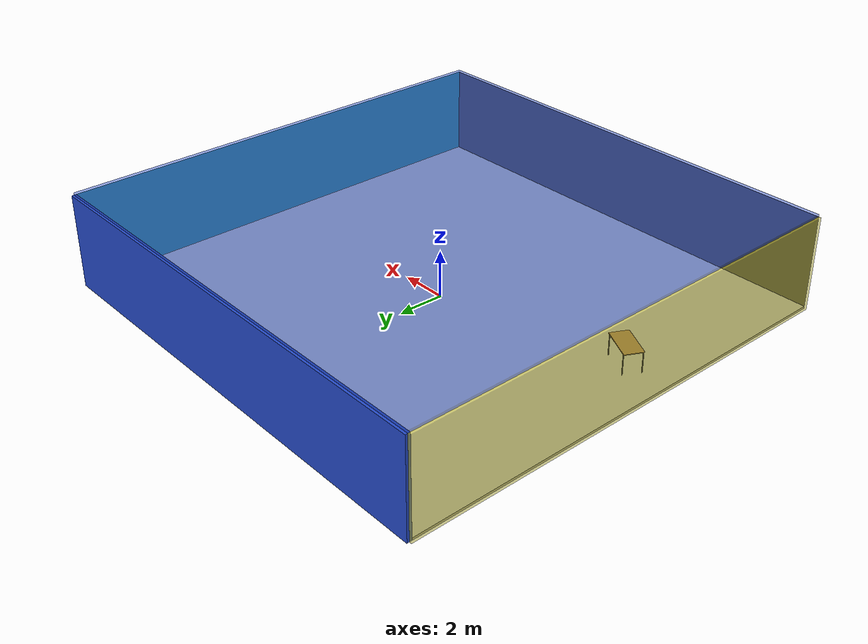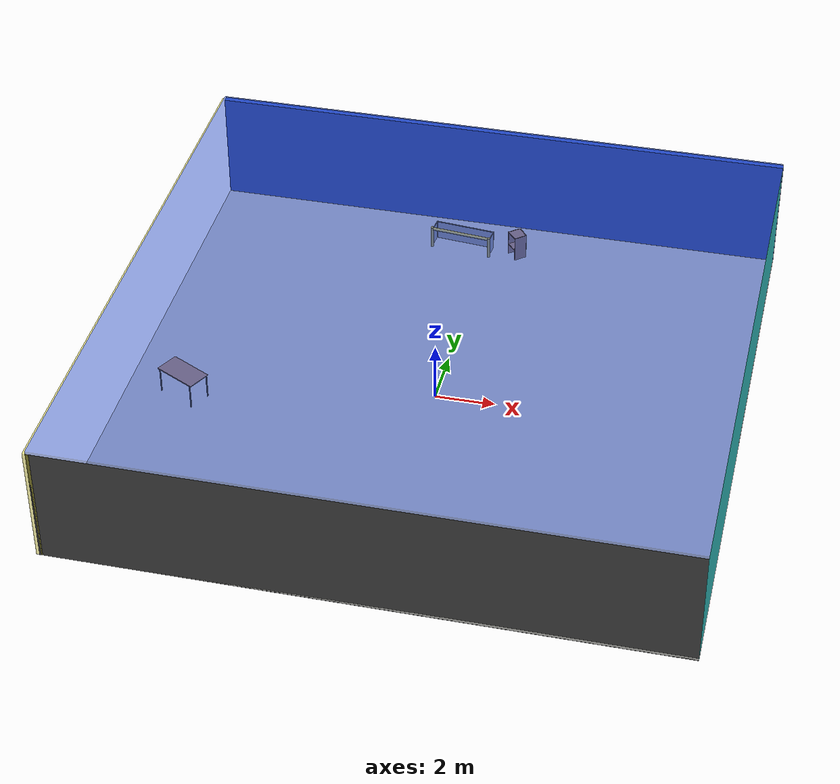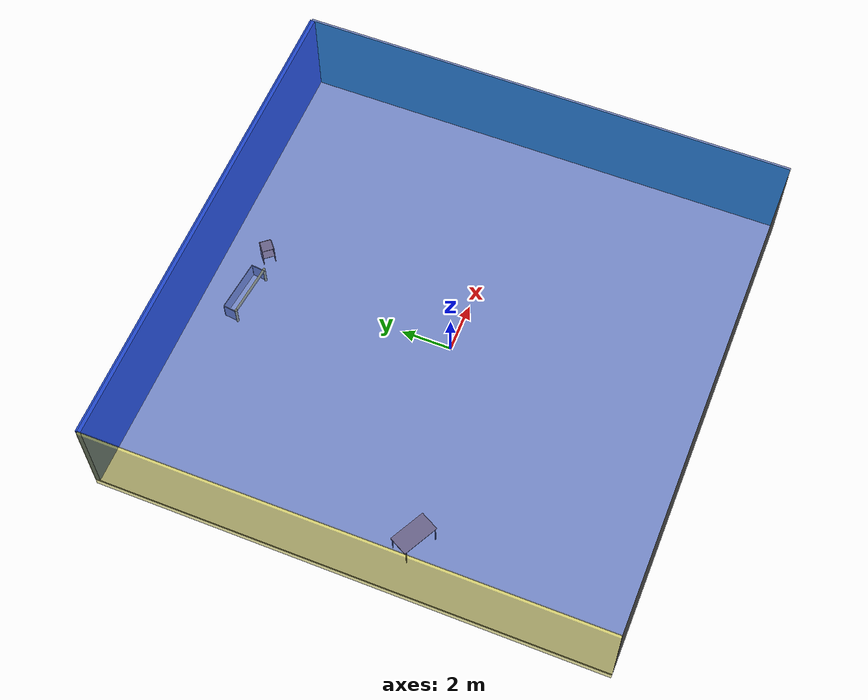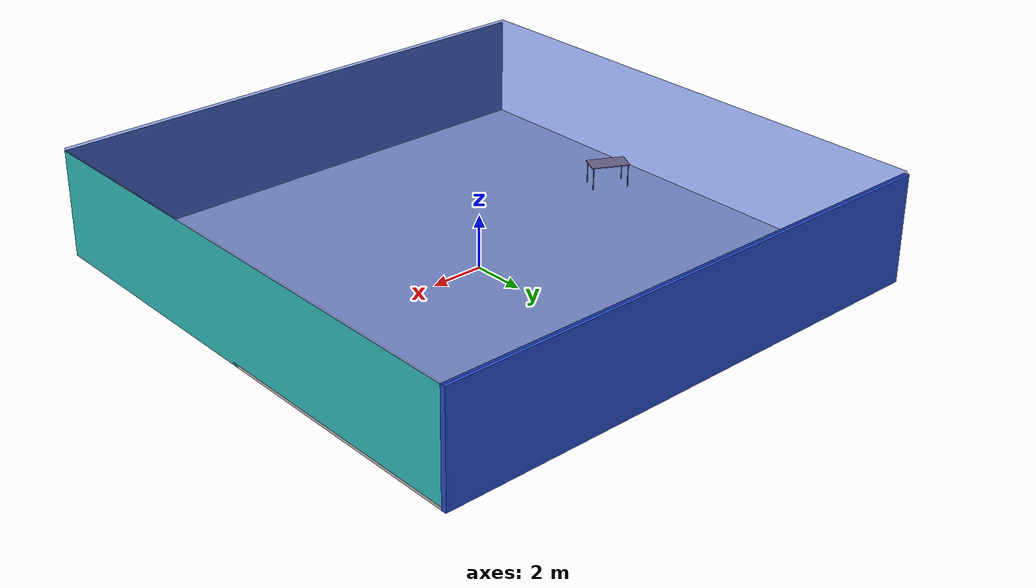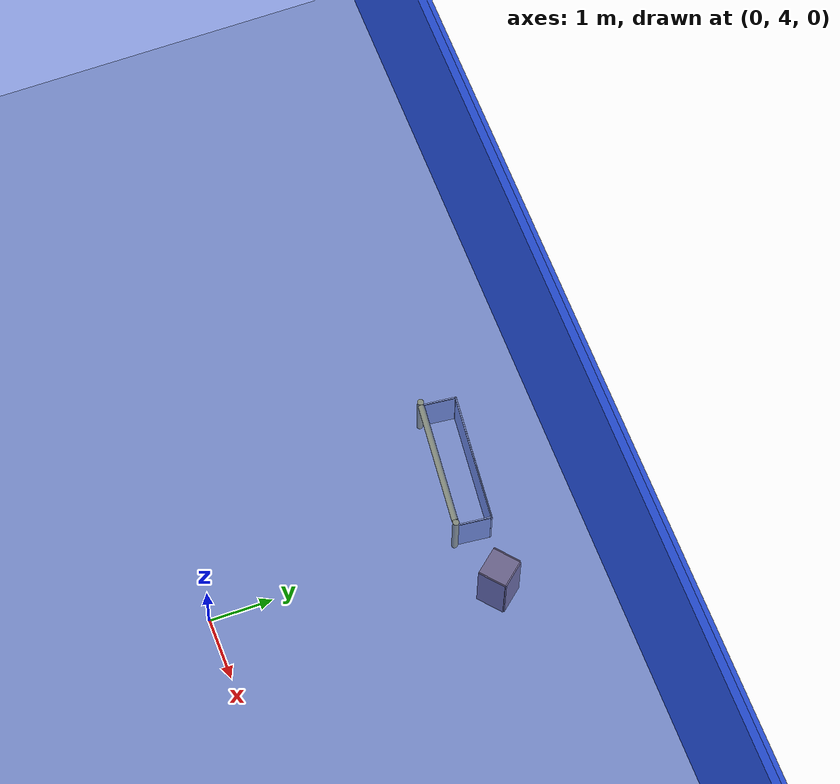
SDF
<sdf version="1.4">
 <world name="default">
  <physics type="ode">
   <max_step_size>0.001</max_step_size>
   <real_time_factor>1</real_time_factor>
   <real_time_update_rate>1000</real_time_update_rate>
   <gravity>0 0 -9.8</gravity>
  </physics>
  <scene><ambient>0.4 0.4 0.4 1</ambient><background>0.7 0.7 0.7 1</background><shadows>1</shadows></scene>
  <model name="Surrounding">
   <static>1</static>
   <link name="Ceiling">
    <collision name="Ceiling_Collision"><geometry><box><size>20 20 0.1</size></box></geometry></collision>
    <visual name="Ceiling_Visual">
     <geometry><box><size>20 20 0.1</size></box></geometry>
     <material>
      <script><uri>file://media/materials/scripts/gazebo.material</uri><name>Gazebo/BlueTransparent</name></script>
     </material>
    </visual>
    <pose>0 0 4.05 0 0 0</pose>
   </link>
   <link name="Wall_South">
    <collision name="Wall_South_Collision">
     <geometry><box><size>20 0 4</size></box></geometry>
     <pose>0 0 2 0 -0 0</pose>
    </collision>
    <visual name="Wall_South_Visual">
     <pose>0 0 2 0 -0 0</pose>
     <geometry><box><size>20 0 4</size></box></geometry>
     <material>
      <script><uri>file://media/materials/scripts/gazebo.material</uri><name>Gazebo/Road</name></script>
     </material>
    </visual>
    <velocity_decay><linear>0</linear><angular>0</angular></velocity_decay>
    <pose>0 -10 0 0 -0 0</pose>
   </link>
   <link name="Wall_East">
    <collision name="Wall_21_Collision">
     <geometry><box><size>20 0 4</size></box></geometry>
     <pose>0 0 2 0 -0 0</pose>
    </collision>
    <visual name="Wall_21_Visual">
     <pose>0 0 2 0 -0 0</pose>
     <geometry><box><size>20 0 4</size></box></geometry>
     <material>
      <script>
       <uri>file://media/materials/scripts/gazebo.material</uri>
       <name>Gazebo/TurquoiseGlowOutline</name>
      </script>
     </material>
    </visual>
    <velocity_decay><linear>0</linear><angular>0</angular></velocity_decay>
    <pose>10 0 0 0 -0 1.5708</pose>
   </link>
   <link name="Wall_North">
    <collision name="Wall_22_Collision">
     <geometry><box><size>20 0.2 4</size></box></geometry>
     <pose>0 0 2 0 -0 0</pose>
    </collision>
    <visual name="Wall_22_Visual">
     <pose>0 0 2 0 -0 0</pose>
     <geometry><box><size>20 0.2 4</size></box></geometry>
     <material>
      <script><uri>file://media/materials/scripts/gazebo.material</uri><name>Gazebo/BlueGlow</name></script>
     </material>
    </visual>
    <velocity_decay><linear>0</linear><angular>0</angular></velocity_decay>
    <pose>0 10 0 0 -0 0</pose>
   </link>
   <link name="Wall_West">
    <collision name="Wall_23_Collision">
     <geometry><box><size>20 0.2 4</size></box></geometry>
     <pose>0 0 2 0 -0 0</pose>
    </collision>
    <visual name="Wall_23_Visual">
     <pose>0 0 2 0 -0 0</pose>
     <geometry><box><size>20 0.2 4</size></box></geometry>
     <material>
      <script>
       <uri>file://media/materials/scripts/gazebo.material</uri>
       <name>Gazebo/YellowTransparent</name>
      </script>
     </material>
    </visual>
    <velocity_decay><linear>0</linear><angular>0</angular></velocity_decay>
    <pose>-10 0 0 0 0 -1.5708</pose>
   </link>
   <link name="Ground_link">
    <collision name="collision">
     <pose>0 0 .05 0 -0 0</pose>
     <geometry><box><size>20 20 0.1</size></box></geometry>
    </collision>
    <visual name="visual">
     <pose>0 0 .05 0 -0 0</pose>
     <geometry><box><size>20 20 0.1</size></box></geometry>
     <material>
      <script><uri>file://media/materials/scripts/gazebo.material</uri><name>Gazebo/CeilingTiled</name></script>
     </material>
    </visual>
   </link>
   <static>1</static>
  </model>
  <spherical_coordinates>
   <surface_model>EARTH_WGS84</surface_model>
   <latitude_deg>0</latitude_deg>
   <longitude_deg>0</longitude_deg>
   <elevation>0</elevation>
   <heading_deg>0</heading_deg>
  </spherical_coordinates>
  <light name="lightball_0" type="diffuse">
   <diffuse>0.8 0.8 0.8 1</diffuse>
   <specular>0.2 0.2 0.2 1</specular>
   <attenuation>
    <range>100</range>
    <constant>0.7</constant>
    <linear>0.01</linear>
    <quadratic>0.001</quadratic>
   </attenuation>
   <direction>-0.5 0.1 -0.9</direction>
   <pose>-1.54670239454 0.15011104965 2.16101876145 0 0 0</pose>
  </light>
  <light name="lightball_1" type="diffuse">
   <diffuse>0.8 0.8 0.8 1</diffuse>
   <specular>0.2 0.2 0.2 1</specular>
   <attenuation>
    <range>100</range>
    <constant>0.7</constant>
    <linear>0.01</linear>
    <quadratic>0.001</quadratic>
   </attenuation>
   <direction>-0.5 0.1 -0.9</direction>
   <pose>1.92628525619 -4.00052288957 2.45549912397 0 0 0</pose>
  </light>
  <light name="lightball_2" type="diffuse">
   <diffuse>0.8 0.8 0.8 1</diffuse>
   <specular>0.2 0.2 0.2 1</specular>
   <attenuation>
    <range>100</range>
    <constant>0.7</constant>
    <linear>0.01</linear>
    <quadratic>0.001</quadratic>
   </attenuation>
   <direction>-0.5 0.1 -0.9</direction>
   <pose>-9.91794239065 -1.66756149499 2.47152396291 0 0 0</pose>
  </light>
  <light name="lightball_3" type="diffuse">
   <diffuse>0.8 0.8 0.8 1</diffuse>
   <specular>0.2 0.2 0.2 1</specular>
   <attenuation>
    <range>100</range>
    <constant>0.7</constant>
    <linear>0.01</linear>
    <quadratic>0.001</quadratic>
   </attenuation>
   <direction>-0.5 0.1 -0.9</direction>
   <pose>-2.21880180661 -6.95558656993 3.06407328358 0 0 0</pose>
  </light>
  <light name="lightball_4" type="diffuse">
   <diffuse>0.8 0.8 0.8 1</diffuse>
   <specular>0.2 0.2 0.2 1</specular>
   <attenuation>
    <range>100</range>
    <constant>0.7</constant>
    <linear>0.01</linear>
    <quadratic>0.001</quadratic>
   </attenuation>
   <direction>-0.5 0.1 -0.9</direction>
   <pose>4.66264849735 1.03182427681 0.645468625482 0 0 0</pose>
  </light>
  <light name="lightball_5" type="diffuse">
   <diffuse>0.8 0.8 0.8 1</diffuse>
   <specular>0.2 0.2 0.2 1</specular>
   <attenuation>
    <range>100</range>
    <constant>0.7</constant>
    <linear>0.01</linear>
    <quadratic>0.001</quadratic>
   </attenuation>
   <direction>-0.5 0.1 -0.9</direction>
   <pose>2.74079963801 -7.27874180988 2.89895250138 0 0 0</pose>
  </light>
  <light name="lightball_6" type="diffuse">
   <diffuse>0.8 0.8 0.8 1</diffuse>
   <specular>0.2 0.2 0.2 1</specular>
   <attenuation>
    <range>100</range>
    <constant>0.7</constant>
    <linear>0.01</linear>
    <quadratic>0.001</quadratic>
   </attenuation>
   <direction>-0.5 0.1 -0.9</direction>
   <pose>-7.81873754862 -1.24092067438 0.783510819668 0 0 0</pose>
  </light>
  <light name="lightball_7" type="diffuse">
   <diffuse>0.8 0.8 0.8 1</diffuse>
   <specular>0.2 0.2 0.2 1</specular>
   <attenuation>
    <range>100</range>
    <constant>0.7</constant>
    <linear>0.01</linear>
    <quadratic>0.001</quadratic>
   </attenuation>
   <direction>-0.5 0.1 -0.9</direction>
   <pose>-0.200874463308 0.880349166754 3.3718177988 0 0 0</pose>
  </light>
  <include><uri>model://table</uri><pose>-8.03465367397 -1.78994737289 0 0 0 2.66393011077</pose></include>
  <include>
   <uri>model://robocup_3Dsim_goal</uri>
   <pose>-0.910474316811 8.01062950575 0 0 0 1.46660788324</pose>
  </include>
  <include><uri>model://cabinet</uri><pose>1.09767090373 8.22559496541 0 0 0 0.697926748941</pose></include>
 </world>
</sdf>

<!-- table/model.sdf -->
<sdf version="1.5">
  <model name="table">
    <static>true</static>
    <link name="link">
      <collision name="surface">
        <pose>0 0 1.0 0 0 0</pose>
        <geometry>
          <box>
            <size>1.5 0.8 0.03</size>
          </box>
        </geometry>
        <surface>
          <friction>
            <ode>
              <mu>0.6</mu>
              <mu2>0.6</mu2>
            </ode>
          </friction>
        </surface>
      </collision>
      <visual name="visual1">
        <pose>0 0 1.0 0 0 0</pose>
        <geometry>
          <box>
            <size>1.5 0.8 0.03</size>
          </box>
        </geometry>
        <material>
          <script>
            <uri>model://media/materials/scripts/gazebo.material</uri>
            <name>Gazebo/Wood</name>
          </script>
        </material>
      </visual>
      <collision name="front_left_leg">
        <pose>0.68 0.38 0.5 0 0 0</pose>
        <geometry>
          <cylinder>
            <radius>0.02</radius>
            <length>1.0</length>
          </cylinder>
        </geometry>
      </collision>
      <visual name="front_left_leg">
        <pose>0.68 0.38 0.5 0 0 0</pose>
        <geometry>
          <cylinder>
            <radius>0.02</radius>
            <length>1.0</length>
          </cylinder>
        </geometry>
        <material>
          <script>
            <uri>model://media/materials/scripts/gazebo.material</uri>
            <name>Gazebo/Grey</name>
          </script>
        </material>
      </visual>
      <collision name="front_right_leg">
        <pose>0.68 -0.38 0.5 0 0 0</pose>
        <geometry>
          <cylinder>
            <radius>0.02</radius>
            <length>1.0</length>
          </cylinder>
        </geometry>
      </collision>
      <visual name="front_right_leg">
        <pose>0.68 -0.38 0.5 0 0 0</pose>
        <geometry>
          <cylinder>
            <radius>0.02</radius>
            <length>1.0</length>
          </cylinder>
        </geometry>
        <material>
          <script>
            <uri>model://media/materials/scripts/gazebo.material</uri>
            <name>Gazebo/Grey</name>
          </script>
        </material>
      </visual>
      <collision name="back_right_leg">
        <pose>-0.68 -0.38 0.5 0 0 0</pose>
        <geometry>
          <cylinder>
            <radius>0.02</radius>
            <length>1.0</length>
          </cylinder>
        </geometry>
      </collision>
      <visual name="back_right_leg">
        <pose>-0.68 -0.38 0.5 0 0 0</pose>
        <geometry>
          <cylinder>
            <radius>0.02</radius>
            <length>1.0</length>
          </cylinder>
        </geometry>
        <material>
          <script>
            <uri>model://media/materials/scripts/gazebo.material</uri>
            <name>Gazebo/Grey</name>
          </script>
        </material>
      </visual>
      <collision name="back_left_leg">
        <pose>-0.68 0.38 0.5 0 0 0</pose>
        <geometry>
          <cylinder>
            <radius>0.02</radius>
            <length>1.0</length>
          </cylinder>
        </geometry>
      </collision>
      <visual name="back_left_leg">
        <pose>-0.68 0.38 0.5 0 0 0</pose>
        <geometry>
          <cylinder>
            <radius>0.02</radius>
            <length>1.0</length>
          </cylinder>
        </geometry>
        <material>
          <script>
            <uri>model://media/materials/scripts/gazebo.material</uri>
            <name>Gazebo/Grey</name>
          </script>
        </material>
      </visual>
    </link>
  </model>
</sdf>

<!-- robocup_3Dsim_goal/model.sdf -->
<sdf version="1.5">
  <model name="robocup_3d_goal">
    <static>true</static>
    <link name="left_post">
      <pose>0 1.05 0.45 0 0 0</pose>
      <collision name="collision">
        <geometry>
          <cylinder>
            <radius>0.05</radius>
            <length>0.9</length>
          </cylinder>
        </geometry>
      </collision>
      <visual name="visual">
        <geometry>
          <cylinder>
            <radius>0.05</radius>
            <length>0.9</length>
          </cylinder>
        </geometry>
        <material>
          <script>
            <uri>file://media/materials/scripts/gazebo.material</uri>
            <name>Gazebo/ZincYellow</name>
          </script>
        </material>
      </visual>
    </link>
    <link name="left_support_horiz_lower">
      <pose>0.30 1.05 0.01 0 0 0</pose>
      <collision name="collision">
        <geometry>
          <box>
            <size>0.50 0.02 0.02</size>
          </box>
        </geometry>
      </collision>
      <visual name="visual">
        <geometry>
          <box>
            <size>0.50 0.02 0.02</size>
          </box>
        </geometry>
        <material>
          <script>
            <uri>file://media/materials/scripts/gazebo.material</uri>
            <name>Gazebo/White</name>
          </script>
        </material>
      </visual>
    </link>
    <link name="left_support_horiz_upper">
      <pose>0.30 1.05 0.79 0 0 0</pose>
      <collision name="collision">
        <geometry>
          <box>
            <size>0.50 0.02 0.02</size>
          </box>
        </geometry>
      </collision>
      <visual name="visual">
        <geometry>
          <box>
            <size>0.50 0.02 0.02</size>
          </box>
        </geometry>
        <material>
          <script>
            <uri>file://media/materials/scripts/gazebo.material</uri>
            <name>Gazebo/White</name>
          </script>
        </material>
      </visual>
    </link>
    <link name="left_support_vertical">
      <pose>0.56 1.05 0.4 0 1.5708 0</pose>
      <collision name="collision">
        <geometry>
          <box>
            <size>0.80 0.02 0.02</size>
          </box>
        </geometry>
      </collision>
      <visual name="visual">
        <geometry>
          <box>
            <size>0.80 0.02 0.02</size>
          </box>
        </geometry>
        <material>
          <script>
            <uri>file://media/materials/scripts/gazebo.material</uri>
            <name>Gazebo/White</name>
          </script>
        </material>
      </visual>
    </link>
    <link name="right_support_horiz_lower">
      <pose>0.30 -1.05 0.01 0 0 0</pose>
      <collision name="collision">
        <geometry>
          <box>
            <size>0.50 0.02 0.02</size>
          </box>
        </geometry>
      </collision>
      <visual name="visual">
        <geometry>
          <box>
            <size>0.50 0.02 0.02</size>
          </box>
        </geometry>
        <material>
          <script>
            <uri>file://media/materials/scripts/gazebo.material</uri>
            <name>Gazebo/White</name>
          </script>
        </material>
      </visual>
    </link>
    <link name="right_support_horiz_upper">
      <pose>0.30 -1.05 0.79 0 0 0</pose>
      <collision name="collision">
        <geometry>
          <box>
            <size>0.50 0.02 0.02</size>
          </box>
        </geometry>
      </collision>
      <visual name="visual">
        <geometry>
          <box>
            <size>0.50 0.02 0.02</size>
          </box>
        </geometry>
        <material>
          <script>
            <uri>file://media/materials/scripts/gazebo.material</uri>
            <name>Gazebo/White</name>
          </script>
        </material>
      </visual>
    </link>
    <link name="right_support_vertical">
      <pose>0.56 -1.05 0.4 0 1.5708 0</pose>
      <collision name="collision">
        <geometry>
          <box>
            <size>0.80 0.02 0.02</size>
          </box>
        </geometry>
      </collision>
      <visual name="visual">
        <geometry>
          <box>
            <size>0.80 0.02 0.02</size>
          </box>
        </geometry>
        <material>
          <script>
            <uri>file://media/materials/scripts/gazebo.material</uri>
            <name>Gazebo/White</name>
          </script>
        </material>
      </visual>
    </link>
    <link name="center_support_horiz_lower">
      <pose>0.56 0 0.01 0 1.5708 0</pose>
      <collision name="collision">
        <geometry>
          <box>
            <size>0.02 2.08 0.02</size>
          </box>
        </geometry>
      </collision>
      <visual name="visual">
        <geometry>
          <box>
            <size>0.02 2.08 0.02</size>
          </box>
        </geometry>
        <material>
          <script>
            <uri>file://media/materials/scripts/gazebo.material</uri>
            <name>Gazebo/White</name>
          </script>
        </material>
      </visual>
    </link>
    <link name="center_support_horiz_upper">
      <pose>0.56 0 0.79 0 1.5708 0</pose>
      <collision name="collision">
        <geometry>
          <box>
            <size>0.02 2.08 0.02</size>
          </box>
        </geometry>
      </collision>
      <visual name="visual">
        <geometry>
          <box>
            <size>0.02 2.08 0.02</size>
          </box>
        </geometry>
        <material>
          <script>
            <uri>file://media/materials/scripts/gazebo.material</uri>
            <name>Gazebo/White</name>
          </script>
        </material>
      </visual>
    </link>
    <link name="right_post">
      <pose>0 -1.05 0.45 0 0 0</pose>
      <collision name="collision">
        <geometry>
          <cylinder>
            <radius>0.05</radius>
            <length>0.9</length>
          </cylinder>
        </geometry>
      </collision>
      <visual name="visual">
        <geometry>
          <cylinder>
            <radius>0.05</radius>
            <length>0.9</length>
          </cylinder>
        </geometry>
        <material>
          <script>
            <uri>file://media/materials/scripts/gazebo.material</uri>
            <name>Gazebo/ZincYellow</name>
          </script>
        </material>
      </visual>
    </link>
    <link name="crossbar">
      <pose>0 0 0.85 1.57 1.57 0</pose>
      <collision name="collision">
        <geometry>
          <cylinder>
            <radius>0.05</radius>
            <length>2.0</length>
          </cylinder>
        </geometry>
      </collision>
      <visual name="visual">
        <geometry>
          <cylinder>
            <radius>0.05</radius>
            <length>2.0</length>
          </cylinder>
        </geometry>
        <material>
          <script>
            <uri>file://media/materials/scripts/gazebo.material</uri>
            <name>Gazebo/ZincYellow</name>
          </script>
        </material>
      </visual>
    </link>
    <link name="center_net">
      <pose>0.56 0 0.40 0 0 0</pose>
      <collision name="collision">
        <geometry>
          <box>
            <size>0.01 2.1 0.80</size>
          </box>
        </geometry>
      </collision>
      <visual name="visual">
        <geometry>
          <box>
            <size>0.01 2.1 0.80</size>
          </box>
        </geometry>
        <material>
          <script>
            <uri>model://../model_source/models/robocup09_spl_field/materials/scripts/</uri>
            <uri>model://../model_source/models/robocup09_spl_field/materials/textures/</uri>
            <name>RoboCup/Net</name>
          </script>
        </material>
      </visual>
    </link>
    <link name="left_net">
      <pose>0.30 1.05 0.40 0 0 0</pose>
      <collision name="collision">
        <geometry>
          <box>
            <size>0.50 0.01 0.76</size>
          </box>
        </geometry>
      </collision>
      <visual name="visual">
        <geometry>
          <box>
            <size>0.50 0.01 0.76</size>
          </box>
        </geometry>
        <material>
          <script>
            <uri>model://../model_source/models/robocup09_spl_field/materials/scripts/</uri>
            <uri>model://../model_source/models/robocup09_spl_field/materials/textures/</uri>
            <name>RoboCup/Net</name>
          </script>
        </material>
      </visual>
    </link>
    <link name="right_net">
      <pose>0.30 -1.05 0.40 0 0 0</pose>
      <collision name="collision">
        <geometry>
          <box>
            <size>0.50 0.01 0.76</size>
          </box>
        </geometry>
      </collision>
      <visual name="visual">
        <geometry>
          <box>
            <size>0.50 0.01 0.76</size>
          </box>
        </geometry>
        <material>
          <script>
            <uri>model://../model_source/models/robocup09_spl_field/materials/scripts/</uri>
            <uri>model://../model_source/models/robocup09_spl_field/materials/textures/</uri>
            <name>RoboCup/Net</name>
          </script>
        </material>
      </visual>
    </link>
  </model>
</sdf>

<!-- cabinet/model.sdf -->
<sdf version="1.5">
  <model name="cabinet">
    <static>true</static>
    <link name="cabinet_bottom_plate">
      <inertial>
        <pose>0 0 -1 0 0 0</pose>
        <inertia>
          <ixx>2.050000</ixx>
          <ixy>0</ixy>
          <ixz>0</ixz>
          <iyy>2.050000</iyy>
          <iyz>0</iyz>
          <izz>2.050000</izz>
        </inertia>
        <mass>25.000000</mass>
      </inertial>
      <collision name="cabinet_bottom_plate_geom">
        <pose>0 0 0.010000 0 0 0</pose>
        <geometry>
          <box>
            <size>0.450000 0.450000 0.020000</size>
          </box>
        </geometry>
      </collision>
      <visual name="cabinet_bottom_plate_geom_visual">
        <pose>0 0 0.010000 0 0 0</pose>
        <geometry>
          <box>
            <size>0.450000 0.450000 0.020000</size>
          </box>
        </geometry>
        <material>
          <script>
            <uri>model://media/materials/scripts/gazebo.material</uri>
            <name>Gazebo/Wood</name>
          </script>
        </material>
      </visual>
      <collision name="cabinet_bottom_plate_geom_cabinet_back_plate">
        <pose>0.235000 0 0.510000 0 0 0</pose>
        <geometry>
          <box>
            <size>0.020000 0.450000 1.020000</size>
          </box>
        </geometry>
      </collision>
      <visual name="cabinet_bottom_plate_geom_cabinet_back_plate_visual">
        <pose>0.235000 0 0.510000 0 0 0</pose>
        <geometry>
          <box>
            <size>0.020000 0.450000 1.020000</size>
          </box>
        </geometry>
        <material>
          <script>
            <uri>model://media/materials/scripts/gazebo.material</uri>
            <name>Gazebo/Wood</name>
          </script>
        </material>
      </visual>
      <collision name="cabinet_bottom_plate_geom_cabinet_left_plate">
        <pose>0 0.235000 0.510000 0 0 0</pose>
        <geometry>
          <box>
            <size>0.450000 0.020000 1.020000</size>
          </box>
        </geometry>
      </collision>
      <visual name="cabinet_bottom_plate_geom_cabinet_left_plate_visual">
        <pose>0 0.235000 0.510000 0 0 0</pose>
        <geometry>
          <box>
            <size>0.450000 0.020000 1.020000</size>
          </box>
        </geometry>
        <material>
          <script>
            <uri>model://media/materials/scripts/gazebo.material</uri>
            <name>Gazebo/Wood</name>
          </script>
        </material>
      </visual>
      <collision name="cabinet_bottom_plate_geom_cabinet_middle_plate">
        <pose>0 0 0.510000 0 0 0</pose>
        <geometry>
          <box>
            <size>0.450000 0.450000 0.020000</size>
          </box>
        </geometry>
      </collision>
      <visual name="cabinet_bottom_plate_geom_cabinet_middle_plate_visual">
        <pose>0 0 0.510000 0 0 0</pose>
        <geometry>
          <box>
            <size>0.450000 0.450000 0.020000</size>
          </box>
        </geometry>
        <material>
          <script>
            <uri>model://media/materials/scripts/gazebo.material</uri>
            <name>Gazebo/Wood</name>
          </script>
        </material>
      </visual>
      <collision name="cabinet_bottom_plate_geom_cabinet_right_plate">
        <pose>0 -0.235000 0.510000 0 0 0</pose>
        <geometry>
          <box>
            <size>0.450000 0.020000 1.020000</size>
          </box>
        </geometry>
      </collision>
      <visual name="cabinet_bottom_plate_geom_cabinet_right_plate_visual">
        <pose>0 -0.235000 0.510000 0 0 0</pose>
        <geometry>
          <box>
            <size>0.450000 0.020000 1.020000</size>
          </box>
        </geometry>
        <material>
          <script>
            <uri>model://media/materials/scripts/gazebo.material</uri>
            <name>Gazebo/Wood</name>
          </script>
        </material>
      </visual>
      <collision name="cabinet_bottom_plate_geom_cabinet_top_plate">
        <pose>0 0 1.010000 0 0 0</pose>
        <geometry>
          <box>
            <size>0.450000 0.450000 0.020000</size>
          </box>
        </geometry>
      </collision>
      <visual name="cabinet_bottom_plate_geom_cabinet_top_plate_visual">
        <pose>0 0 1.010000 0 0 0</pose>
        <geometry>
          <box>
            <size>0.450000 0.450000 0.020000</size>
          </box>
        </geometry>
        <material>
          <script>
            <uri>model://media/materials/scripts/gazebo.material</uri>
            <name>Gazebo/Wood</name>
          </script>
        </material>
      </visual>
    </link>
  </model>
</sdf>
